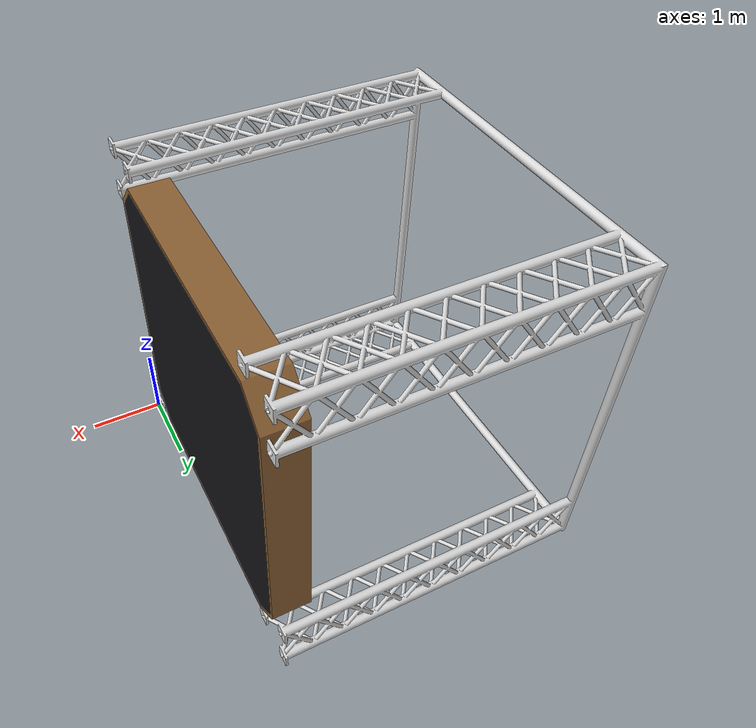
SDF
<?xml version="1.0"?>
<sdf version="1.6">
  <model name="laberinto_real">
    <static>true</static>

    <pose>0 0 0 0 0 1.5708</pose>

    <link name="link">

      <visual name="visual_piso">
        <geometry>
          <mesh>
            <uri>model://laberinto_real/meshes/piso.stl</uri>
            <scale>0.001 0.001 0.001</scale>
          </mesh>
        </geometry>
        <material>
          <ambient>0.06 0.06 0.07 1</ambient>
          <diffuse>0.08 0.08 0.09 1</diffuse>
          <specular>0.02 0.02 0.02 1</specular>
          <pbr>
            <metal>
              <metalness>0.0</metalness>
              <roughness>0.95</roughness>
            </metal>
          </pbr>
        </material>
      </visual>

      <collision name="colision_piso">
        <geometry>
          <mesh>
            <uri>model://laberinto_real/meshes/piso.stl</uri>
            <scale>0.001 0.001 0.001</scale>
          </mesh>
        </geometry>
      </collision>

      <visual name="visual_paredes">
        <geometry>
          <mesh>
            <uri>model://laberinto_real/meshes/paredes.stl</uri>
            <scale>0.001 0.001 0.001</scale>
          </mesh>
        </geometry>
        <material>
          <ambient>0.45 0.30 0.16 1</ambient>
          <diffuse>0.55 0.38 0.20 1</diffuse>
          <specular>0.05 0.04 0.03 1</specular>
          <pbr>
            <metal>
              <metalness>0.0</metalness>
              <roughness>0.92</roughness>
            </metal>
          </pbr>
        </material>
      </visual>

      <collision name="colision_paredes">
        <geometry>
          <mesh>
            <uri>model://laberinto_real/meshes/paredes.stl</uri>
            <scale>0.001 0.001 0.001</scale>
          </mesh>
        </geometry>
      </collision>

      <visual name="visual_lineas">
        <pose>0 -0.02027 0 0 0 0</pose>
        <geometry>
          <mesh>
            <uri>model://laberinto_real/meshes/lineas.stl</uri>
            <scale>0.001 0.001 0.001</scale>
          </mesh>
        </geometry>
        <material>
          <ambient>0.02 0.20 0.55 1</ambient>
          <diffuse>0.03 0.28 0.70 1</diffuse>
          <specular>0.04 0.04 0.05 1</specular>
          <pbr>
            <metal>
              <metalness>0.0</metalness>
              <roughness>0.88</roughness>
            </metal>
          </pbr>
        </material>
      </visual>

      <visual name="visual_jaula">
        <geometry>
          <mesh>
            <uri>model://laberinto_real/meshes/jaula.stl</uri>
            <scale>0.001 0.001 0.001</scale>
          </mesh>
        </geometry>
        <material>
          <ambient>0.85 0.85 0.85 1</ambient>
          <diffuse>0.85 0.85 0.85 1</diffuse>
        </material>
      </visual>

      <collision name="colision_jaula">
        <geometry>
          <mesh>
            <uri>model://laberinto_real/meshes/jaula.stl</uri>
            <scale>0.001 0.001 0.001</scale>
          </mesh>
        </geometry>
      </collision>

      <visual name="visual_cajasRecientes">
        <geometry>
          <mesh>
            <uri>model://laberinto_real/meshes/cajasRecientes.stl</uri>
            <scale>0.001 0.001 0.001</scale>
          </mesh>
        </geometry>
        <material>
          <ambient>1.0 0.85 0.0 1</ambient>
          <diffuse>1.0 0.85 0.0 1</diffuse>
        </material>
      </visual>

      <collision name="colision_cajasRecientes">
        <geometry>
          <mesh>
            <uri>model://laberinto_real/meshes/cajasRecientes.stl</uri>
            <scale>0.001 0.001 0.001</scale>
          </mesh>
        </geometry>
      </collision>

    </link>
  </model>
</sdf>
